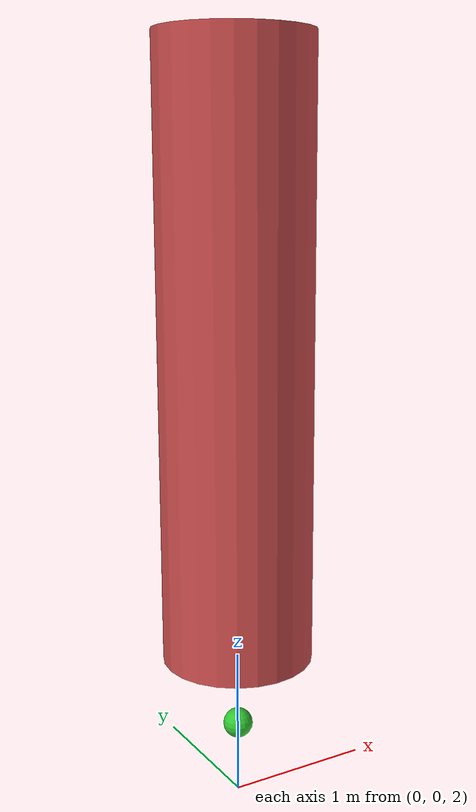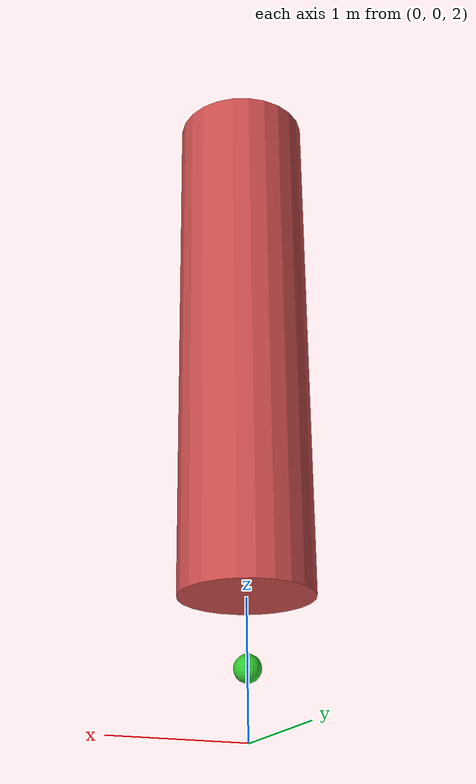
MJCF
<mujoco model="rocket">
    <option gravity="0 0 -9.81" timestep="0.01" integrator="RK4"/>

    <!-- Default Settings -->
    <default>
        <geom type="cylinder" size="0.5 2" rgba="0.8 0.3 0.3 1"/>
        <joint type="free"/>
        <motor ctrlrange="0 1000"/>
    </default>

    <!-- World Body -->
    <worldbody>
        <!-- Rocket -->
        <body name="rocket" pos="0 0 5">
            <geom name="main_body" size="0.5 2" mass="10"/>
            <joint name="free_joint"/>

            <!-- Thruster -->
            <site name="thruster" pos="0 0 -2.5" size="0.1" rgba="0.2 0.8 0.2 1"/>
        </body>
    </worldbody>

    <!-- Actuator for Thruster -->
    <actuator>
        <motor name="thrust" joint="free_joint" gear="1"/>
    </actuator>
</mujoco>
